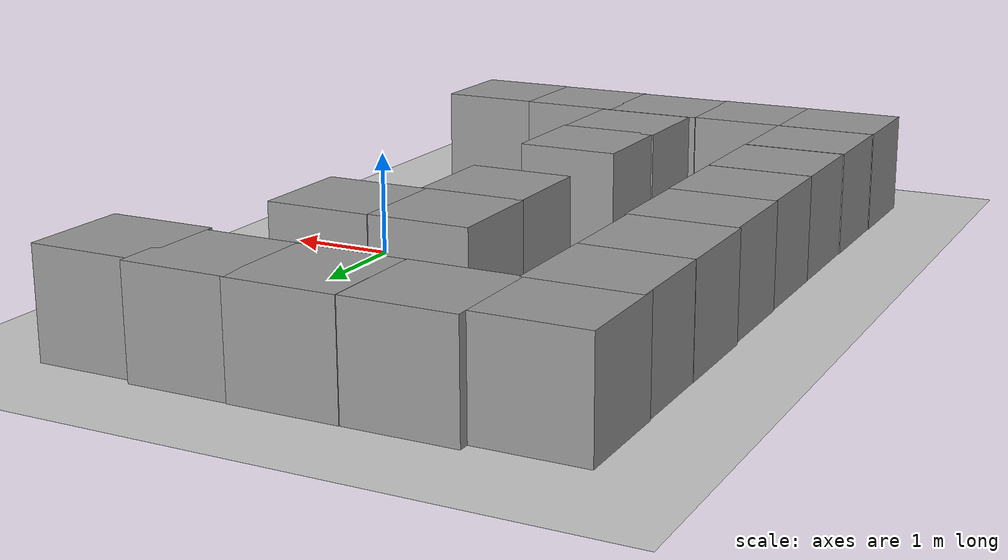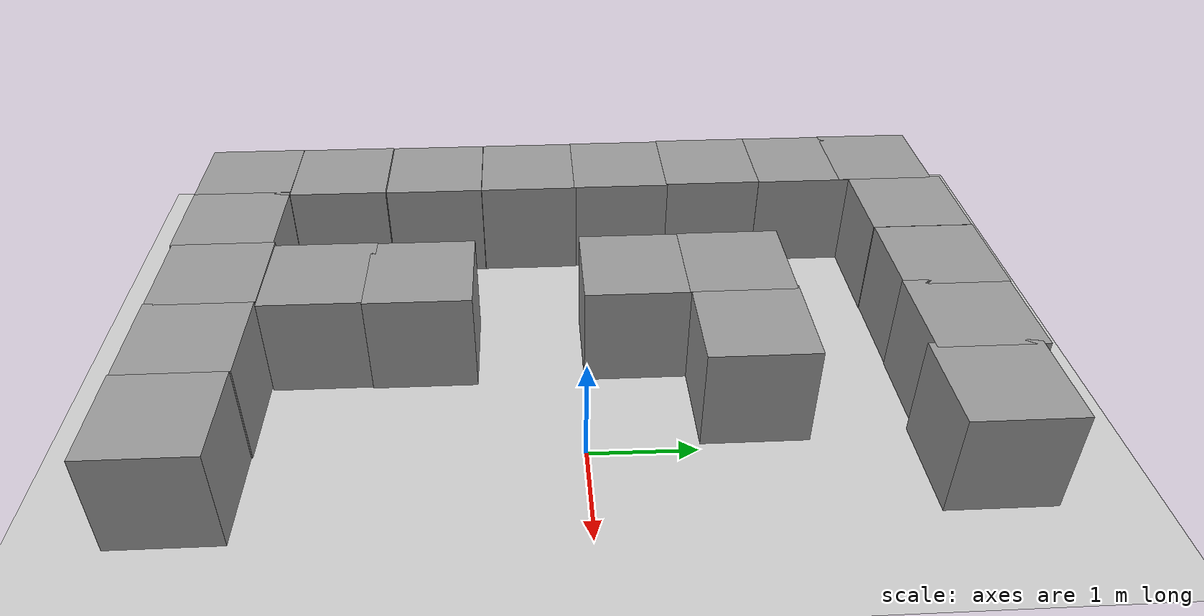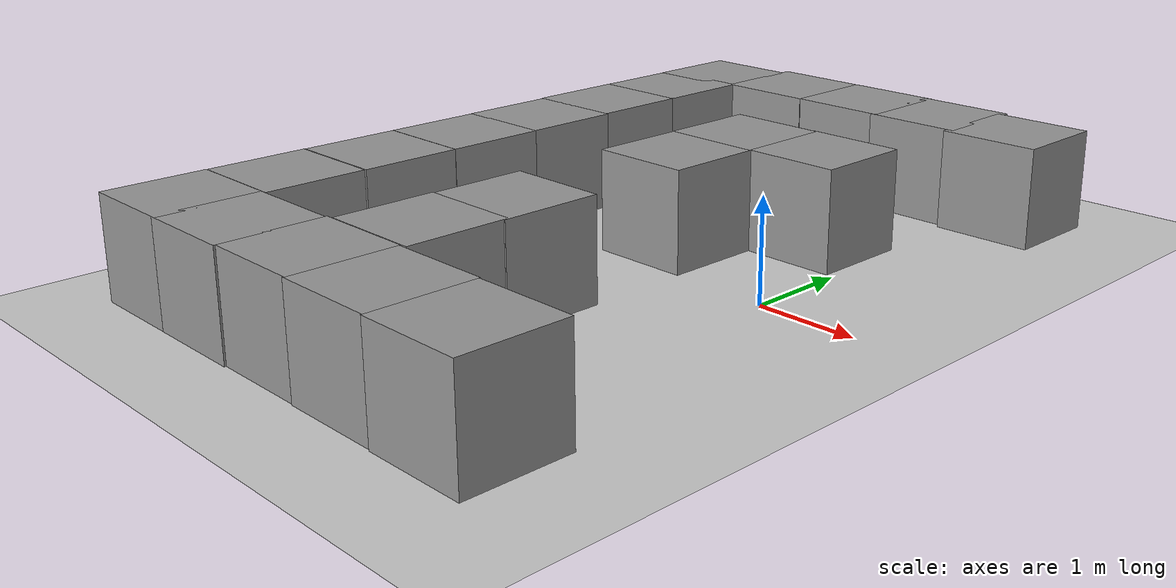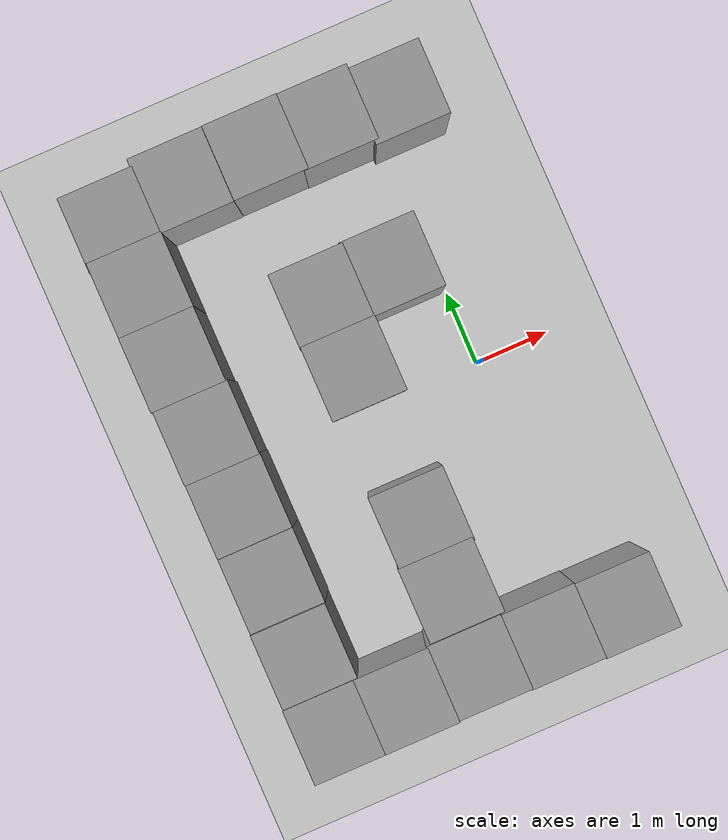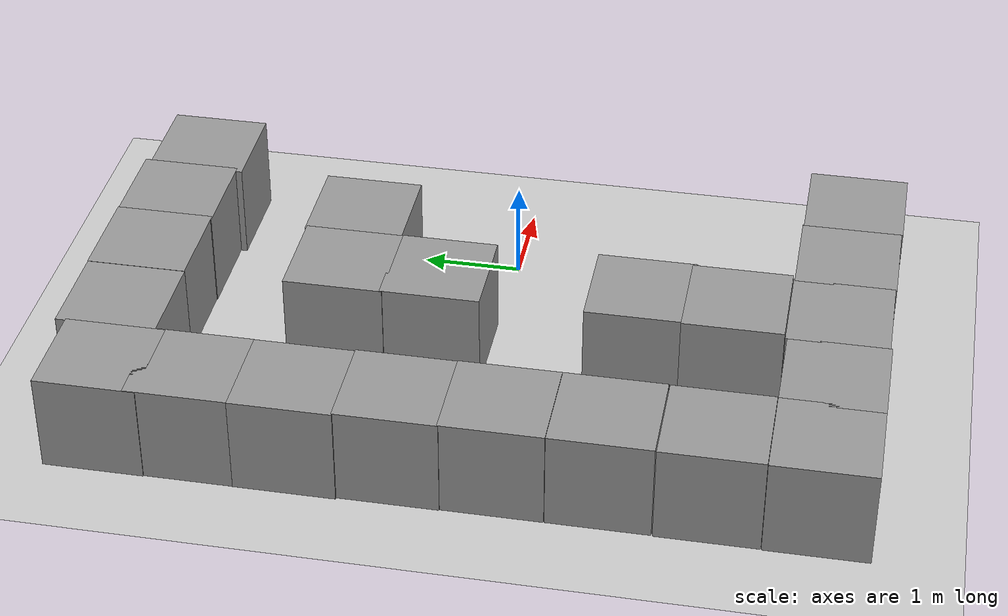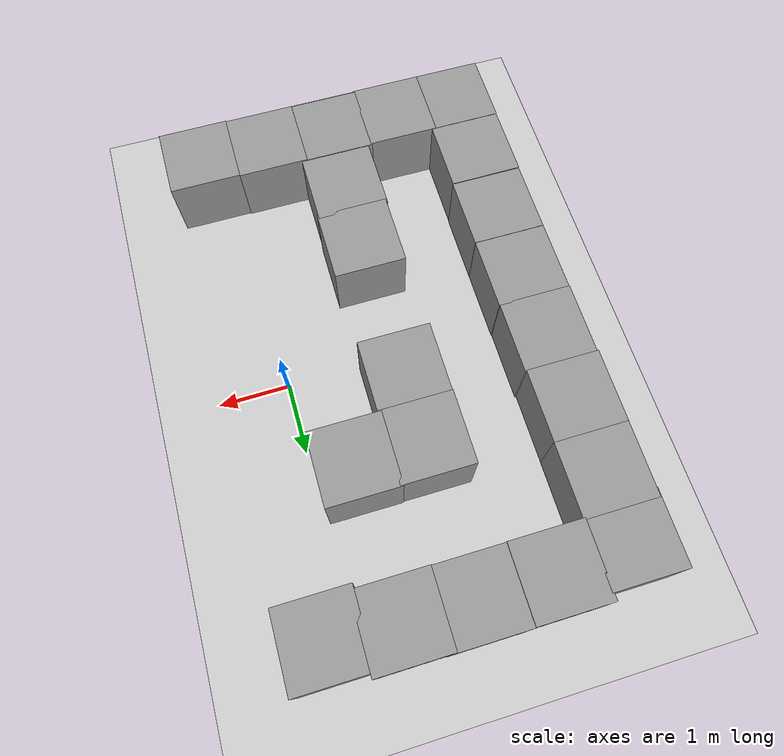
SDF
<sdf version="1.7">
 <world name="default">
  <model name="ground_plane">
   <static>1</static>
   <link name="link">
    <collision name="collision">
     <geometry><plane><normal>0 0 1</normal><size>100 100</size></plane></geometry>
     <surface><friction><ode><mu>100</mu><mu2>50</mu2></ode></friction></surface>
    </collision>
    <visual name="visual">
     <cast_shadows>0</cast_shadows>
     <geometry><plane><normal>0 0 1</normal><size>100 100</size></plane></geometry>
     <material>
      <script><uri>file://media/materials/scripts/gazebo.material</uri><name>Gazebo/Grey</name></script>
     </material>
    </visual>
   </link>
  </model>
  <model name="turtlebot3_world">
   <link name="link_4">
    <inertial>
     <mass>1</mass>
     <inertia>
      <ixx>0.166667</ixx>
      <ixy>0</ixy>
      <ixz>0</ixz>
      <iyy>0.166667</iyy>
      <iyz>0</iyz>
      <izz>0.166667</izz>
     </inertia>
    </inertial>
    <pose>-3.51588 2.52725 0.5 0 -0 0</pose>
    <visual name="visual">
     <geometry><box><size>1 1 1</size></box></geometry>
     <material>
      <lighting>1</lighting>
      <script><uri>file://media/materials/scripts/gazebo.material</uri><name>Gazebo/Grey</name></script>
      <shader type="pixel"/>
     </material>
    </visual>
    <collision name="collision">
     <geometry><box><size>1 1 1</size></box></geometry>
     <surface>
      <friction>
       <ode><mu>1</mu><mu2>1</mu2><fdir1>0 0 0</fdir1><slip1>0</slip1><slip2>0</slip2></ode>
       <torsional>
        <coefficient>1</coefficient>
        <patch_radius>0</patch_radius>
        <surface_radius>0</surface_radius>
        <use_patch_radius>1</use_patch_radius>
        <ode><slip>0</slip></ode>
       </torsional>
      </friction>
      <bounce><restitution_coefficient>0</restitution_coefficient><threshold>1e+06</threshold></bounce>
      <contact>
       <collide_without_contact>0</collide_without_contact>
       <collide_without_contact_bitmask>1</collide_without_contact_bitmask>
       <collide_bitmask>1</collide_bitmask>
       <ode>
        <soft_cfm>0</soft_cfm>
        <soft_erp>0.2</soft_erp>
        <kp>1e+13</kp>
        <kd>1</kd>
        <max_vel>0.01</max_vel>
        <min_depth>0</min_depth>
       </ode>
       <bullet>
        <split_impulse>1</split_impulse>
        <split_impulse_penetration_threshold>-0.01</split_impulse_penetration_threshold>
        <soft_cfm>0</soft_cfm>
        <soft_erp>0.2</soft_erp>
        <kp>1e+13</kp>
        <kd>1</kd>
       </bullet>
      </contact>
     </surface>
    </collision>
   </link>
   <link name="link_4_clone">
    <inertial>
     <mass>1</mass>
     <inertia>
      <ixx>0.166667</ixx>
      <ixy>0</ixy>
      <ixz>0</ixz>
      <iyy>0.166667</iyy>
      <iyz>0</iyz>
      <izz>0.166667</izz>
     </inertia>
    </inertial>
    <pose>-3.51881 1.52869 0.5 0 -0 0</pose>
    <visual name="visual">
     <geometry><box><size>1 1 1</size></box></geometry>
     <material>
      <lighting>1</lighting>
      <script><uri>file://media/materials/scripts/gazebo.material</uri><name>Gazebo/Grey</name></script>
      <shader type="pixel"/>
     </material>
    </visual>
    <collision name="collision">
     <geometry><box><size>1 1 1</size></box></geometry>
     <surface>
      <friction>
       <ode><mu>1</mu><mu2>1</mu2><fdir1>0 0 0</fdir1><slip1>0</slip1><slip2>0</slip2></ode>
       <torsional>
        <coefficient>1</coefficient>
        <patch_radius>0</patch_radius>
        <surface_radius>0</surface_radius>
        <use_patch_radius>1</use_patch_radius>
        <ode><slip>0</slip></ode>
       </torsional>
      </friction>
      <bounce><restitution_coefficient>0</restitution_coefficient><threshold>1e+06</threshold></bounce>
      <contact>
       <collide_without_contact>0</collide_without_contact>
       <collide_without_contact_bitmask>1</collide_without_contact_bitmask>
       <collide_bitmask>1</collide_bitmask>
       <ode>
        <soft_cfm>0</soft_cfm>
        <soft_erp>0.2</soft_erp>
        <kp>1e+13</kp>
        <kd>1</kd>
        <max_vel>0.01</max_vel>
        <min_depth>0</min_depth>
       </ode>
       <bullet>
        <split_impulse>1</split_impulse>
        <split_impulse_penetration_threshold>-0.01</split_impulse_penetration_threshold>
        <soft_cfm>0</soft_cfm>
        <soft_erp>0.2</soft_erp>
        <kp>1e+13</kp>
        <kd>1</kd>
       </bullet>
      </contact>
     </surface>
    </collision>
   </link>
   <link name="link_4_clone_0">
    <inertial>
     <mass>1</mass>
     <inertia>
      <ixx>0.166667</ixx>
      <ixy>0</ixy>
      <ixz>0</ixz>
      <iyy>0.166667</iyy>
      <iyz>0</iyz>
      <izz>0.166667</izz>
     </inertia>
    </inertial>
    <pose>-3.49974 0.540999 0.5 0 -0 0</pose>
    <visual name="visual">
     <geometry><box><size>1 1 1</size></box></geometry>
     <material>
      <lighting>1</lighting>
      <script><uri>file://media/materials/scripts/gazebo.material</uri><name>Gazebo/Grey</name></script>
      <shader type="pixel"/>
     </material>
    </visual>
    <collision name="collision">
     <geometry><box><size>1 1 1</size></box></geometry>
     <surface>
      <friction>
       <ode><mu>1</mu><mu2>1</mu2><fdir1>0 0 0</fdir1><slip1>0</slip1><slip2>0</slip2></ode>
       <torsional>
        <coefficient>1</coefficient>
        <patch_radius>0</patch_radius>
        <surface_radius>0</surface_radius>
        <use_patch_radius>1</use_patch_radius>
        <ode><slip>0</slip></ode>
       </torsional>
      </friction>
      <bounce><restitution_coefficient>0</restitution_coefficient><threshold>1e+06</threshold></bounce>
      <contact>
       <collide_without_contact>0</collide_without_contact>
       <collide_without_contact_bitmask>1</collide_without_contact_bitmask>
       <collide_bitmask>1</collide_bitmask>
       <ode>
        <soft_cfm>0</soft_cfm>
        <soft_erp>0.2</soft_erp>
        <kp>1e+13</kp>
        <kd>1</kd>
        <max_vel>0.01</max_vel>
        <min_depth>0</min_depth>
       </ode>
       <bullet>
        <split_impulse>1</split_impulse>
        <split_impulse_penetration_threshold>-0.01</split_impulse_penetration_threshold>
        <soft_cfm>0</soft_cfm>
        <soft_erp>0.2</soft_erp>
        <kp>1e+13</kp>
        <kd>1</kd>
       </bullet>
      </contact>
     </surface>
    </collision>
   </link>
   <link name="link_4_clone_1">
    <inertial>
     <mass>1</mass>
     <inertia>
      <ixx>0.166667</ixx>
      <ixy>0</ixy>
      <ixz>0</ixz>
      <iyy>0.166667</iyy>
      <iyz>0</iyz>
      <izz>0.166667</izz>
     </inertia>
    </inertial>
    <pose>-3.49177 -0.443894 0.5 0 -0 0</pose>
    <visual name="visual">
     <geometry><box><size>1 1 1</size></box></geometry>
     <material>
      <lighting>1</lighting>
      <script><uri>file://media/materials/scripts/gazebo.material</uri><name>Gazebo/Grey</name></script>
      <shader type="pixel"/>
     </material>
    </visual>
    <collision name="collision">
     <geometry><box><size>1 1 1</size></box></geometry>
     <surface>
      <friction>
       <ode><mu>1</mu><mu2>1</mu2><fdir1>0 0 0</fdir1><slip1>0</slip1><slip2>0</slip2></ode>
       <torsional>
        <coefficient>1</coefficient>
        <patch_radius>0</patch_radius>
        <surface_radius>0</surface_radius>
        <use_patch_radius>1</use_patch_radius>
        <ode><slip>0</slip></ode>
       </torsional>
      </friction>
      <bounce><restitution_coefficient>0</restitution_coefficient><threshold>1e+06</threshold></bounce>
      <contact>
       <collide_without_contact>0</collide_without_contact>
       <collide_without_contact_bitmask>1</collide_without_contact_bitmask>
       <collide_bitmask>1</collide_bitmask>
       <ode>
        <soft_cfm>0</soft_cfm>
        <soft_erp>0.2</soft_erp>
        <kp>1e+13</kp>
        <kd>1</kd>
        <max_vel>0.01</max_vel>
        <min_depth>0</min_depth>
       </ode>
       <bullet>
        <split_impulse>1</split_impulse>
        <split_impulse_penetration_threshold>-0.01</split_impulse_penetration_threshold>
        <soft_cfm>0</soft_cfm>
        <soft_erp>0.2</soft_erp>
        <kp>1e+13</kp>
        <kd>1</kd>
       </bullet>
      </contact>
     </surface>
    </collision>
   </link>
   <link name="link_4_clone_13">
    <inertial>
     <mass>1</mass>
     <inertia>
      <ixx>0.166667</ixx>
      <ixy>0</ixy>
      <ixz>0</ixz>
      <iyy>0.166667</iyy>
      <iyz>0</iyz>
      <izz>0.166667</izz>
     </inertia>
    </inertial>
    <pose>-2.56143 -3.46208 0.5 0 -0 0</pose>
    <visual name="visual">
     <geometry><box><size>1 1 1</size></box></geometry>
     <material>
      <lighting>1</lighting>
      <script><uri>file://media/materials/scripts/gazebo.material</uri><name>Gazebo/Grey</name></script>
      <shader type="pixel"/>
     </material>
    </visual>
    <collision name="collision">
     <geometry><box><size>1 1 1</size></box></geometry>
     <surface>
      <friction>
       <ode><mu>1</mu><mu2>1</mu2><fdir1>0 0 0</fdir1><slip1>0</slip1><slip2>0</slip2></ode>
       <torsional>
        <coefficient>1</coefficient>
        <patch_radius>0</patch_radius>
        <surface_radius>0</surface_radius>
        <use_patch_radius>1</use_patch_radius>
        <ode><slip>0</slip></ode>
       </torsional>
      </friction>
      <bounce><restitution_coefficient>0</restitution_coefficient><threshold>1e+06</threshold></bounce>
      <contact>
       <collide_without_contact>0</collide_without_contact>
       <collide_without_contact_bitmask>1</collide_without_contact_bitmask>
       <collide_bitmask>1</collide_bitmask>
       <ode>
        <soft_cfm>0</soft_cfm>
        <soft_erp>0.2</soft_erp>
        <kp>1e+13</kp>
        <kd>1</kd>
        <max_vel>0.01</max_vel>
        <min_depth>0</min_depth>
       </ode>
       <bullet>
        <split_impulse>1</split_impulse>
        <split_impulse_penetration_threshold>-0.01</split_impulse_penetration_threshold>
        <soft_cfm>0</soft_cfm>
        <soft_erp>0.2</soft_erp>
        <kp>1e+13</kp>
        <kd>1</kd>
       </bullet>
      </contact>
     </surface>
    </collision>
   </link>
   <link name="link_4_clone_14">
    <inertial>
     <mass>1</mass>
     <inertia>
      <ixx>0.166667</ixx>
      <ixy>0</ixy>
      <ixz>0</ixz>
      <iyy>0.166667</iyy>
      <iyz>0</iyz>
      <izz>0.166667</izz>
     </inertia>
    </inertial>
    <pose>-1.57857 -3.44426 0.5 0 -0 0</pose>
    <visual name="visual">
     <geometry><box><size>1 1 1</size></box></geometry>
     <material>
      <lighting>1</lighting>
      <script><uri>file://media/materials/scripts/gazebo.material</uri><name>Gazebo/Grey</name></script>
      <shader type="pixel"/>
     </material>
    </visual>
    <collision name="collision">
     <geometry><box><size>1 1 1</size></box></geometry>
     <surface>
      <friction>
       <ode><mu>1</mu><mu2>1</mu2><fdir1>0 0 0</fdir1><slip1>0</slip1><slip2>0</slip2></ode>
       <torsional>
        <coefficient>1</coefficient>
        <patch_radius>0</patch_radius>
        <surface_radius>0</surface_radius>
        <use_patch_radius>1</use_patch_radius>
        <ode><slip>0</slip></ode>
       </torsional>
      </friction>
      <bounce><restitution_coefficient>0</restitution_coefficient><threshold>1e+06</threshold></bounce>
      <contact>
       <collide_without_contact>0</collide_without_contact>
       <collide_without_contact_bitmask>1</collide_without_contact_bitmask>
       <collide_bitmask>1</collide_bitmask>
       <ode>
        <soft_cfm>0</soft_cfm>
        <soft_erp>0.2</soft_erp>
        <kp>1e+13</kp>
        <kd>1</kd>
        <max_vel>0.01</max_vel>
        <min_depth>0</min_depth>
       </ode>
       <bullet>
        <split_impulse>1</split_impulse>
        <split_impulse_penetration_threshold>-0.01</split_impulse_penetration_threshold>
        <soft_cfm>0</soft_cfm>
        <soft_erp>0.2</soft_erp>
        <kp>1e+13</kp>
        <kd>1</kd>
       </bullet>
      </contact>
     </surface>
    </collision>
   </link>
   <link name="link_4_clone_15">
    <inertial>
     <mass>1</mass>
     <inertia>
      <ixx>0.166667</ixx>
      <ixy>0</ixy>
      <ixz>0</ixz>
      <iyy>0.166667</iyy>
      <iyz>0</iyz>
      <izz>0.166667</izz>
     </inertia>
    </inertial>
    <pose>-0.599535 -3.45421 0.5 0 -0 0</pose>
    <visual name="visual">
     <geometry><box><size>1 1 1</size></box></geometry>
     <material>
      <lighting>1</lighting>
      <script><uri>file://media/materials/scripts/gazebo.material</uri><name>Gazebo/Grey</name></script>
      <shader type="pixel"/>
     </material>
    </visual>
    <collision name="collision">
     <geometry><box><size>1 1 1</size></box></geometry>
     <surface>
      <friction>
       <ode><mu>1</mu><mu2>1</mu2><fdir1>0 0 0</fdir1><slip1>0</slip1><slip2>0</slip2></ode>
       <torsional>
        <coefficient>1</coefficient>
        <patch_radius>0</patch_radius>
        <surface_radius>0</surface_radius>
        <use_patch_radius>1</use_patch_radius>
        <ode><slip>0</slip></ode>
       </torsional>
      </friction>
      <bounce><restitution_coefficient>0</restitution_coefficient><threshold>1e+06</threshold></bounce>
      <contact>
       <collide_without_contact>0</collide_without_contact>
       <collide_without_contact_bitmask>1</collide_without_contact_bitmask>
       <collide_bitmask>1</collide_bitmask>
       <ode>
        <soft_cfm>0</soft_cfm>
        <soft_erp>0.2</soft_erp>
        <kp>1e+13</kp>
        <kd>1</kd>
        <max_vel>0.01</max_vel>
        <min_depth>0</min_depth>
       </ode>
       <bullet>
        <split_impulse>1</split_impulse>
        <split_impulse_penetration_threshold>-0.01</split_impulse_penetration_threshold>
        <soft_cfm>0</soft_cfm>
        <soft_erp>0.2</soft_erp>
        <kp>1e+13</kp>
        <kd>1</kd>
       </bullet>
      </contact>
     </surface>
    </collision>
   </link>
   <link name="link_4_clone_16">
    <inertial>
     <mass>1</mass>
     <inertia>
      <ixx>0.166667</ixx>
      <ixy>0</ixy>
      <ixz>0</ixz>
      <iyy>0.166667</iyy>
      <iyz>0</iyz>
      <izz>0.166667</izz>
     </inertia>
    </inertial>
    <pose>0.398656 -3.46623 0.5 0 -0 0</pose>
    <visual name="visual">
     <geometry><box><size>1 1 1</size></box></geometry>
     <material>
      <lighting>1</lighting>
      <script><uri>file://media/materials/scripts/gazebo.material</uri><name>Gazebo/Grey</name></script>
      <shader type="pixel"/>
     </material>
    </visual>
    <collision name="collision">
     <geometry><box><size>1 1 1</size></box></geometry>
     <surface>
      <friction>
       <ode><mu>1</mu><mu2>1</mu2><fdir1>0 0 0</fdir1><slip1>0</slip1><slip2>0</slip2></ode>
       <torsional>
        <coefficient>1</coefficient>
        <patch_radius>0</patch_radius>
        <surface_radius>0</surface_radius>
        <use_patch_radius>1</use_patch_radius>
        <ode><slip>0</slip></ode>
       </torsional>
      </friction>
      <bounce><restitution_coefficient>0</restitution_coefficient><threshold>1e+06</threshold></bounce>
      <contact>
       <collide_without_contact>0</collide_without_contact>
       <collide_without_contact_bitmask>1</collide_without_contact_bitmask>
       <collide_bitmask>1</collide_bitmask>
       <ode>
        <soft_cfm>0</soft_cfm>
        <soft_erp>0.2</soft_erp>
        <kp>1e+13</kp>
        <kd>1</kd>
        <max_vel>0.01</max_vel>
        <min_depth>0</min_depth>
       </ode>
       <bullet>
        <split_impulse>1</split_impulse>
        <split_impulse_penetration_threshold>-0.01</split_impulse_penetration_threshold>
        <soft_cfm>0</soft_cfm>
        <soft_erp>0.2</soft_erp>
        <kp>1e+13</kp>
        <kd>1</kd>
       </bullet>
      </contact>
     </surface>
    </collision>
   </link>
   <link name="link_4_clone_2">
    <inertial>
     <mass>1</mass>
     <inertia>
      <ixx>0.166667</ixx>
      <ixy>0</ixy>
      <ixz>0</ixz>
      <iyy>0.166667</iyy>
      <iyz>0</iyz>
      <izz>0.166667</izz>
     </inertia>
    </inertial>
    <pose>-3.49078 -1.44711 0.5 0 -0 0</pose>
    <visual name="visual">
     <geometry><box><size>1 1 1</size></box></geometry>
     <material>
      <lighting>1</lighting>
      <script><uri>file://media/materials/scripts/gazebo.material</uri><name>Gazebo/Grey</name></script>
      <shader type="pixel"/>
     </material>
    </visual>
    <collision name="collision">
     <geometry><box><size>1 1 1</size></box></geometry>
     <surface>
      <friction>
       <ode><mu>1</mu><mu2>1</mu2><fdir1>0 0 0</fdir1><slip1>0</slip1><slip2>0</slip2></ode>
       <torsional>
        <coefficient>1</coefficient>
        <patch_radius>0</patch_radius>
        <surface_radius>0</surface_radius>
        <use_patch_radius>1</use_patch_radius>
        <ode><slip>0</slip></ode>
       </torsional>
      </friction>
      <bounce><restitution_coefficient>0</restitution_coefficient><threshold>1e+06</threshold></bounce>
      <contact>
       <collide_without_contact>0</collide_without_contact>
       <collide_without_contact_bitmask>1</collide_without_contact_bitmask>
       <collide_bitmask>1</collide_bitmask>
       <ode>
        <soft_cfm>0</soft_cfm>
        <soft_erp>0.2</soft_erp>
        <kp>1e+13</kp>
        <kd>1</kd>
        <max_vel>0.01</max_vel>
        <min_depth>0</min_depth>
       </ode>
       <bullet>
        <split_impulse>1</split_impulse>
        <split_impulse_penetration_threshold>-0.01</split_impulse_penetration_threshold>
        <soft_cfm>0</soft_cfm>
        <soft_erp>0.2</soft_erp>
        <kp>1e+13</kp>
        <kd>1</kd>
       </bullet>
      </contact>
     </surface>
    </collision>
   </link>
   <link name="link_4_clone_29">
    <inertial>
     <mass>1</mass>
     <inertia>
      <ixx>0.166667</ixx>
      <ixy>0</ixy>
      <ixz>0</ixz>
      <iyy>0.166667</iyy>
      <iyz>0</iyz>
      <izz>0.166667</izz>
     </inertia>
    </inertial>
    <pose>-1.51608 -2.43615 0.5 0 -0 0</pose>
    <visual name="visual">
     <geometry><box><size>1 1 1</size></box></geometry>
     <material>
      <lighting>1</lighting>
      <script><uri>file://media/materials/scripts/gazebo.material</uri><name>Gazebo/Grey</name></script>
      <shader type="pixel"/>
     </material>
    </visual>
    <collision name="collision">
     <geometry><box><size>1 1 1</size></box></geometry>
     <surface>
      <friction>
       <ode><mu>1</mu><mu2>1</mu2><fdir1>0 0 0</fdir1><slip1>0</slip1><slip2>0</slip2></ode>
       <torsional>
        <coefficient>1</coefficient>
        <patch_radius>0</patch_radius>
        <surface_radius>0</surface_radius>
        <use_patch_radius>1</use_patch_radius>
        <ode><slip>0</slip></ode>
       </torsional>
      </friction>
      <bounce><restitution_coefficient>0</restitution_coefficient><threshold>1e+06</threshold></bounce>
      <contact>
       <collide_without_contact>0</collide_without_contact>
       <collide_without_contact_bitmask>1</collide_without_contact_bitmask>
       <collide_bitmask>1</collide_bitmask>
       <ode>
        <soft_cfm>0</soft_cfm>
        <soft_erp>0.2</soft_erp>
        <kp>1e+13</kp>
        <kd>1</kd>
        <max_vel>0.01</max_vel>
        <min_depth>0</min_depth>
       </ode>
       <bullet>
        <split_impulse>1</split_impulse>
        <split_impulse_penetration_threshold>-0.01</split_impulse_penetration_threshold>
        <soft_cfm>0</soft_cfm>
        <soft_erp>0.2</soft_erp>
        <kp>1e+13</kp>
        <kd>1</kd>
       </bullet>
      </contact>
     </surface>
    </collision>
   </link>
   <link name="link_4_clone_3">
    <inertial>
     <mass>1</mass>
     <inertia>
      <ixx>0.166667</ixx>
      <ixy>0</ixy>
      <ixz>0</ixz>
      <iyy>0.166667</iyy>
      <iyz>0</iyz>
      <izz>0.166667</izz>
     </inertia>
    </inertial>
    <pose>-3.49859 -2.45716 0.5 0 -0 0</pose>
    <visual name="visual">
     <geometry><box><size>1 1 1</size></box></geometry>
     <material>
      <lighting>1</lighting>
      <script><uri>file://media/materials/scripts/gazebo.material</uri><name>Gazebo/Grey</name></script>
      <shader type="pixel"/>
     </material>
    </visual>
    <collision name="collision">
     <geometry><box><size>1 1 1</size></box></geometry>
     <surface>
      <friction>
       <ode><mu>1</mu><mu2>1</mu2><fdir1>0 0 0</fdir1><slip1>0</slip1><slip2>0</slip2></ode>
       <torsional>
        <coefficient>1</coefficient>
        <patch_radius>0</patch_radius>
        <surface_radius>0</surface_radius>
        <use_patch_radius>1</use_patch_radius>
        <ode><slip>0</slip></ode>
       </torsional>
      </friction>
      <bounce><restitution_coefficient>0</restitution_coefficient><threshold>1e+06</threshold></bounce>
      <contact>
       <collide_without_contact>0</collide_without_contact>
       <collide_without_contact_bitmask>1</collide_without_contact_bitmask>
       <collide_bitmask>1</collide_bitmask>
       <ode>
        <soft_cfm>0</soft_cfm>
        <soft_erp>0.2</soft_erp>
        <kp>1e+13</kp>
        <kd>1</kd>
        <max_vel>0.01</max_vel>
        <min_depth>0</min_depth>
       </ode>
       <bullet>
        <split_impulse>1</split_impulse>
        <split_impulse_penetration_threshold>-0.01</split_impulse_penetration_threshold>
        <soft_cfm>0</soft_cfm>
        <soft_erp>0.2</soft_erp>
        <kp>1e+13</kp>
        <kd>1</kd>
       </bullet>
      </contact>
     </surface>
    </collision>
   </link>
   <link name="link_4_clone_30">
    <inertial>
     <mass>1</mass>
     <inertia>
      <ixx>0.166667</ixx>
      <ixy>0</ixy>
      <ixz>0</ixz>
      <iyy>0.166667</iyy>
      <iyz>0</iyz>
      <izz>0.166667</izz>
     </inertia>
    </inertial>
    <pose>-1.49992 -1.4863 0.5 0 -0 0</pose>
    <visual name="visual">
     <geometry><box><size>1 1 1</size></box></geometry>
     <material>
      <lighting>1</lighting>
      <script><uri>file://media/materials/scripts/gazebo.material</uri><name>Gazebo/Grey</name></script>
      <shader type="pixel"/>
     </material>
    </visual>
    <collision name="collision">
     <geometry><box><size>1 1 1</size></box></geometry>
     <surface>
      <friction>
       <ode><mu>1</mu><mu2>1</mu2><fdir1>0 0 0</fdir1><slip1>0</slip1><slip2>0</slip2></ode>
       <torsional>
        <coefficient>1</coefficient>
        <patch_radius>0</patch_radius>
        <surface_radius>0</surface_radius>
        <use_patch_radius>1</use_patch_radius>
        <ode><slip>0</slip></ode>
       </torsional>
      </friction>
      <bounce><restitution_coefficient>0</restitution_coefficient><threshold>1e+06</threshold></bounce>
      <contact>
       <collide_without_contact>0</collide_without_contact>
       <collide_without_contact_bitmask>1</collide_without_contact_bitmask>
       <collide_bitmask>1</collide_bitmask>
       <ode>
        <soft_cfm>0</soft_cfm>
        <soft_erp>0.2</soft_erp>
        <kp>1e+13</kp>
        <kd>1</kd>
        <max_vel>0.01</max_vel>
        <min_depth>0</min_depth>
       </ode>
       <bullet>
        <split_impulse>1</split_impulse>
        <split_impulse_penetration_threshold>-0.01</split_impulse_penetration_threshold>
        <soft_cfm>0</soft_cfm>
        <soft_erp>0.2</soft_erp>
        <kp>1e+13</kp>
        <kd>1</kd>
       </bullet>
      </contact>
     </surface>
    </collision>
   </link>
   <link name="link_4_clone_31">
    <inertial>
     <mass>1</mass>
     <inertia>
      <ixx>0.166667</ixx>
      <ixy>0</ixy>
      <ixz>0</ixz>
      <iyy>0.166667</iyy>
      <iyz>0</iyz>
      <izz>0.166667</izz>
     </inertia>
    </inertial>
    <pose>-1.52199 0.536252 0.5 0 -0 0</pose>
    <visual name="visual">
     <geometry><box><size>1 1 1</size></box></geometry>
     <material>
      <lighting>1</lighting>
      <script><uri>file://media/materials/scripts/gazebo.material</uri><name>Gazebo/Grey</name></script>
      <shader type="pixel"/>
     </material>
    </visual>
    <collision name="collision">
     <geometry><box><size>1 1 1</size></box></geometry>
     <surface>
      <friction>
       <ode><mu>1</mu><mu2>1</mu2><fdir1>0 0 0</fdir1><slip1>0</slip1><slip2>0</slip2></ode>
       <torsional>
        <coefficient>1</coefficient>
        <patch_radius>0</patch_radius>
        <surface_radius>0</surface_radius>
        <use_patch_radius>1</use_patch_radius>
        <ode><slip>0</slip></ode>
       </torsional>
      </friction>
      <bounce><restitution_coefficient>0</restitution_coefficient><threshold>1e+06</threshold></bounce>
      <contact>
       <collide_without_contact>0</collide_without_contact>
       <collide_without_contact_bitmask>1</collide_without_contact_bitmask>
       <collide_bitmask>1</collide_bitmask>
       <ode>
        <soft_cfm>0</soft_cfm>
        <soft_erp>0.2</soft_erp>
        <kp>1e+13</kp>
        <kd>1</kd>
        <max_vel>0.01</max_vel>
        <min_depth>0</min_depth>
       </ode>
       <bullet>
        <split_impulse>1</split_impulse>
        <split_impulse_penetration_threshold>-0.01</split_impulse_penetration_threshold>
        <soft_cfm>0</soft_cfm>
        <soft_erp>0.2</soft_erp>
        <kp>1e+13</kp>
        <kd>1</kd>
       </bullet>
      </contact>
     </surface>
    </collision>
   </link>
   <link name="link_4_clone_32">
    <inertial>
     <mass>1</mass>
     <inertia>
      <ixx>0.166667</ixx>
      <ixy>0</ixy>
      <ixz>0</ixz>
      <iyy>0.166667</iyy>
      <iyz>0</iyz>
      <izz>0.166667</izz>
     </inertia>
    </inertial>
    <pose>-1.53079 1.50922 0.5 0 -0 0</pose>
    <visual name="visual">
     <geometry><box><size>1 1 1</size></box></geometry>
     <material>
      <lighting>1</lighting>
      <script><uri>file://media/materials/scripts/gazebo.material</uri><name>Gazebo/Grey</name></script>
      <shader type="pixel"/>
     </material>
    </visual>
    <collision name="collision">
     <geometry><box><size>1 1 1</size></box></geometry>
     <surface>
      <friction>
       <ode><mu>1</mu><mu2>1</mu2><fdir1>0 0 0</fdir1><slip1>0</slip1><slip2>0</slip2></ode>
       <torsional>
        <coefficient>1</coefficient>
        <patch_radius>0</patch_radius>
        <surface_radius>0</surface_radius>
        <use_patch_radius>1</use_patch_radius>
        <ode><slip>0</slip></ode>
       </torsional>
      </friction>
      <bounce><restitution_coefficient>0</restitution_coefficient><threshold>1e+06</threshold></bounce>
      <contact>
       <collide_without_contact>0</collide_without_contact>
       <collide_without_contact_bitmask>1</collide_without_contact_bitmask>
       <collide_bitmask>1</collide_bitmask>
       <ode>
        <soft_cfm>0</soft_cfm>
        <soft_erp>0.2</soft_erp>
        <kp>1e+13</kp>
        <kd>1</kd>
        <max_vel>0.01</max_vel>
        <min_depth>0</min_depth>
       </ode>
       <bullet>
        <split_impulse>1</split_impulse>
        <split_impulse_penetration_threshold>-0.01</split_impulse_penetration_threshold>
        <soft_cfm>0</soft_cfm>
        <soft_erp>0.2</soft_erp>
        <kp>1e+13</kp>
        <kd>1</kd>
       </bullet>
      </contact>
     </surface>
    </collision>
   </link>
   <link name="link_4_clone_33">
    <inertial>
     <mass>1</mass>
     <inertia>
      <ixx>0.166667</ixx>
      <ixy>0</ixy>
      <ixz>0</ixz>
      <iyy>0.166667</iyy>
      <iyz>0</iyz>
      <izz>0.166667</izz>
     </inertia>
    </inertial>
    <pose>-0.575022 1.52129 0.5 0 -0 0</pose>
    <visual name="visual">
     <geometry><box><size>1 1 1</size></box></geometry>
     <material>
      <lighting>1</lighting>
      <script><uri>file://media/materials/scripts/gazebo.material</uri><name>Gazebo/Grey</name></script>
      <shader type="pixel"/>
     </material>
    </visual>
    <collision name="collision">
     <geometry><box><size>1 1 1</size></box></geometry>
     <surface>
      <friction>
       <ode><mu>1</mu><mu2>1</mu2><fdir1>0 0 0</fdir1><slip1>0</slip1><slip2>0</slip2></ode>
       <torsional>
        <coefficient>1</coefficient>
        <patch_radius>0</patch_radius>
        <surface_radius>0</surface_radius>
        <use_patch_radius>1</use_patch_radius>
        <ode><slip>0</slip></ode>
       </torsional>
      </friction>
      <bounce><restitution_coefficient>0</restitution_coefficient><threshold>1e+06</threshold></bounce>
      <contact>
       <collide_without_contact>0</collide_without_contact>
       <collide_without_contact_bitmask>1</collide_without_contact_bitmask>
       <collide_bitmask>1</collide_bitmask>
       <ode>
        <soft_cfm>0</soft_cfm>
        <soft_erp>0.2</soft_erp>
        <kp>1e+13</kp>
        <kd>1</kd>
        <max_vel>0.01</max_vel>
        <min_depth>0</min_depth>
       </ode>
       <bullet>
        <split_impulse>1</split_impulse>
        <split_impulse_penetration_threshold>-0.01</split_impulse_penetration_threshold>
        <soft_cfm>0</soft_cfm>
        <soft_erp>0.2</soft_erp>
        <kp>1e+13</kp>
        <kd>1</kd>
       </bullet>
      </contact>
     </surface>
    </collision>
   </link>
   <link name="link_4_clone_4">
    <inertial>
     <mass>1</mass>
     <inertia>
      <ixx>0.166667</ixx>
      <ixy>0</ixy>
      <ixz>0</ixz>
      <iyy>0.166667</iyy>
      <iyz>0</iyz>
      <izz>0.166667</izz>
     </inertia>
    </inertial>
    <pose>-3.5063 -3.46092 0.5 0 -0 0</pose>
    <visual name="visual">
     <geometry><box><size>1 1 1</size></box></geometry>
     <material>
      <lighting>1</lighting>
      <script><uri>file://media/materials/scripts/gazebo.material</uri><name>Gazebo/Grey</name></script>
      <shader type="pixel"/>
     </material>
    </visual>
    <collision name="collision">
     <geometry><box><size>1 1 1</size></box></geometry>
     <surface>
      <friction>
       <ode><mu>1</mu><mu2>1</mu2><fdir1>0 0 0</fdir1><slip1>0</slip1><slip2>0</slip2></ode>
       <torsional>
        <coefficient>1</coefficient>
        <patch_radius>0</patch_radius>
        <surface_radius>0</surface_radius>
        <use_patch_radius>1</use_patch_radius>
        <ode><slip>0</slip></ode>
       </torsional>
      </friction>
      <bounce><restitution_coefficient>0</restitution_coefficient><threshold>1e+06</threshold></bounce>
      <contact>
       <collide_without_contact>0</collide_without_contact>
       <collide_without_contact_bitmask>1</collide_without_contact_bitmask>
       <collide_bitmask>1</collide_bitmask>
       <ode>
        <soft_cfm>0</soft_cfm>
        <soft_erp>0.2</soft_erp>
        <kp>1e+13</kp>
        <kd>1</kd>
        <max_vel>0.01</max_vel>
        <min_depth>0</min_depth>
       </ode>
       <bullet>
        <split_impulse>1</split_impulse>
        <split_impulse_penetration_threshold>-0.01</split_impulse_penetration_threshold>
        <soft_cfm>0</soft_cfm>
        <soft_erp>0.2</soft_erp>
        <kp>1e+13</kp>
        <kd>1</kd>
       </bullet>
      </contact>
     </surface>
    </collision>
   </link>
   <link name="link_4_clone_5">
    <inertial>
     <mass>1</mass>
     <inertia>
      <ixx>0.166667</ixx>
      <ixy>0</ixy>
      <ixz>0</ixz>
      <iyy>0.166667</iyy>
      <iyz>0</iyz>
      <izz>0.166667</izz>
     </inertia>
    </inertial>
    <pose>-3.52418 3.40151 0.5 0 -0 0</pose>
    <visual name="visual">
     <geometry><box><size>1 1 1</size></box></geometry>
     <material>
      <lighting>1</lighting>
      <script><uri>file://media/materials/scripts/gazebo.material</uri><name>Gazebo/Grey</name></script>
      <shader type="pixel"/>
     </material>
    </visual>
    <collision name="collision">
     <geometry><box><size>1 1 1</size></box></geometry>
     <surface>
      <friction>
       <ode><mu>1</mu><mu2>1</mu2><fdir1>0 0 0</fdir1><slip1>0</slip1><slip2>0</slip2></ode>
       <torsional>
        <coefficient>1</coefficient>
        <patch_radius>0</patch_radius>
        <surface_radius>0</surface_radius>
        <use_patch_radius>1</use_patch_radius>
        <ode><slip>0</slip></ode>
       </torsional>
      </friction>
      <bounce><restitution_coefficient>0</restitution_coefficient><threshold>1e+06</threshold></bounce>
      <contact>
       <collide_without_contact>0</collide_without_contact>
       <collide_without_contact_bitmask>1</collide_without_contact_bitmask>
       <collide_bitmask>1</collide_bitmask>
       <ode>
        <soft_cfm>0</soft_cfm>
        <soft_erp>0.2</soft_erp>
        <kp>1e+13</kp>
        <kd>1</kd>
        <max_vel>0.01</max_vel>
        <min_depth>0</min_depth>
       </ode>
       <bullet>
        <split_impulse>1</split_impulse>
        <split_impulse_penetration_threshold>-0.01</split_impulse_penetration_threshold>
        <soft_cfm>0</soft_cfm>
        <soft_erp>0.2</soft_erp>
        <kp>1e+13</kp>
        <kd>1</kd>
       </bullet>
      </contact>
     </surface>
    </collision>
   </link>
   <link name="link_4_clone_6">
    <inertial>
     <mass>1</mass>
     <inertia>
      <ixx>0.166667</ixx>
      <ixy>0</ixy>
      <ixz>0</ixz>
      <iyy>0.166667</iyy>
      <iyz>0</iyz>
      <izz>0.166667</izz>
     </inertia>
    </inertial>
    <pose>-2.54672 3.50152 0.5 0 -0 0</pose>
    <visual name="visual">
     <geometry><box><size>1 1 1</size></box></geometry>
     <material>
      <lighting>1</lighting>
      <script><uri>file://media/materials/scripts/gazebo.material</uri><name>Gazebo/Grey</name></script>
      <shader type="pixel"/>
     </material>
    </visual>
    <collision name="collision">
     <geometry><box><size>1 1 1</size></box></geometry>
     <surface>
      <friction>
       <ode><mu>1</mu><mu2>1</mu2><fdir1>0 0 0</fdir1><slip1>0</slip1><slip2>0</slip2></ode>
       <torsional>
        <coefficient>1</coefficient>
        <patch_radius>0</patch_radius>
        <surface_radius>0</surface_radius>
        <use_patch_radius>1</use_patch_radius>
        <ode><slip>0</slip></ode>
       </torsional>
      </friction>
      <bounce><restitution_coefficient>0</restitution_coefficient><threshold>1e+06</threshold></bounce>
      <contact>
       <collide_without_contact>0</collide_without_contact>
       <collide_without_contact_bitmask>1</collide_without_contact_bitmask>
       <collide_bitmask>1</collide_bitmask>
       <ode>
        <soft_cfm>0</soft_cfm>
        <soft_erp>0.2</soft_erp>
        <kp>1e+13</kp>
        <kd>1</kd>
        <max_vel>0.01</max_vel>
        <min_depth>0</min_depth>
       </ode>
       <bullet>
        <split_impulse>1</split_impulse>
        <split_impulse_penetration_threshold>-0.01</split_impulse_penetration_threshold>
        <soft_cfm>0</soft_cfm>
        <soft_erp>0.2</soft_erp>
        <kp>1e+13</kp>
        <kd>1</kd>
       </bullet>
      </contact>
     </surface>
    </collision>
   </link>
   <link name="link_4_clone_7">
    <inertial>
     <mass>1</mass>
     <inertia>
      <ixx>0.166667</ixx>
      <ixy>0</ixy>
      <ixz>0</ixz>
      <iyy>0.166667</iyy>
      <iyz>0</iyz>
      <izz>0.166667</izz>
     </inertia>
    </inertial>
    <pose>-1.54433 3.50729 0.5 0 -0 0</pose>
    <visual name="visual">
     <geometry><box><size>1 1 1</size></box></geometry>
     <material>
      <lighting>1</lighting>
      <script><uri>file://media/materials/scripts/gazebo.material</uri><name>Gazebo/Grey</name></script>
      <shader type="pixel"/>
     </material>
    </visual>
    <collision name="collision">
     <geometry><box><size>1 1 1</size></box></geometry>
     <surface>
      <friction>
       <ode><mu>1</mu><mu2>1</mu2><fdir1>0 0 0</fdir1><slip1>0</slip1><slip2>0</slip2></ode>
       <torsional>
        <coefficient>1</coefficient>
        <patch_radius>0</patch_radius>
        <surface_radius>0</surface_radius>
        <use_patch_radius>1</use_patch_radius>
        <ode><slip>0</slip></ode>
       </torsional>
      </friction>
      <bounce><restitution_coefficient>0</restitution_coefficient><threshold>1e+06</threshold></bounce>
      <contact>
       <collide_without_contact>0</collide_without_contact>
       <collide_without_contact_bitmask>1</collide_without_contact_bitmask>
       <collide_bitmask>1</collide_bitmask>
       <ode>
        <soft_cfm>0</soft_cfm>
        <soft_erp>0.2</soft_erp>
        <kp>1e+13</kp>
        <kd>1</kd>
        <max_vel>0.01</max_vel>
        <min_depth>0</min_depth>
       </ode>
       <bullet>
        <split_impulse>1</split_impulse>
        <split_impulse_penetration_threshold>-0.01</split_impulse_penetration_threshold>
        <soft_cfm>0</soft_cfm>
        <soft_erp>0.2</soft_erp>
        <kp>1e+13</kp>
        <kd>1</kd>
       </bullet>
      </contact>
     </surface>
    </collision>
   </link>
   <link name="link_4_clone_8">
    <inertial>
     <mass>1</mass>
     <inertia>
      <ixx>0.166667</ixx>
      <ixy>0</ixy>
      <ixz>0</ixz>
      <iyy>0.166667</iyy>
      <iyz>0</iyz>
      <izz>0.166667</izz>
     </inertia>
    </inertial>
    <pose>-0.608216 3.5 0.5 0 -0 0</pose>
    <visual name="visual">
     <geometry><box><size>1 1 1</size></box></geometry>
     <material>
      <lighting>1</lighting>
      <script><uri>file://media/materials/scripts/gazebo.material</uri><name>Gazebo/Grey</name></script>
      <shader type="pixel"/>
     </material>
    </visual>
    <collision name="collision">
     <geometry><box><size>1 1 1</size></box></geometry>
     <surface>
      <friction>
       <ode><mu>1</mu><mu2>1</mu2><fdir1>0 0 0</fdir1><slip1>0</slip1><slip2>0</slip2></ode>
       <torsional>
        <coefficient>1</coefficient>
        <patch_radius>0</patch_radius>
        <surface_radius>0</surface_radius>
        <use_patch_radius>1</use_patch_radius>
        <ode><slip>0</slip></ode>
       </torsional>
      </friction>
      <bounce><restitution_coefficient>0</restitution_coefficient><threshold>1e+06</threshold></bounce>
      <contact>
       <collide_without_contact>0</collide_without_contact>
       <collide_without_contact_bitmask>1</collide_without_contact_bitmask>
       <collide_bitmask>1</collide_bitmask>
       <ode>
        <soft_cfm>0</soft_cfm>
        <soft_erp>0.2</soft_erp>
        <kp>1e+13</kp>
        <kd>1</kd>
        <max_vel>0.01</max_vel>
        <min_depth>0</min_depth>
       </ode>
       <bullet>
        <split_impulse>1</split_impulse>
        <split_impulse_penetration_threshold>-0.01</split_impulse_penetration_threshold>
        <soft_cfm>0</soft_cfm>
        <soft_erp>0.2</soft_erp>
        <kp>1e+13</kp>
        <kd>1</kd>
       </bullet>
      </contact>
     </surface>
    </collision>
   </link>
   <link name="link_4_clone_9">
    <inertial>
     <mass>1</mass>
     <inertia>
      <ixx>0.166667</ixx>
      <ixy>0</ixy>
      <ixz>0</ixz>
      <iyy>0.166667</iyy>
      <iyz>0</iyz>
      <izz>0.166667</izz>
     </inertia>
    </inertial>
    <pose>0.326944 3.43597 0.5 0 -0 0</pose>
    <visual name="visual">
     <geometry><box><size>1 1 1</size></box></geometry>
     <material>
      <lighting>1</lighting>
      <script><uri>file://media/materials/scripts/gazebo.material</uri><name>Gazebo/Grey</name></script>
      <shader type="pixel"/>
     </material>
    </visual>
    <collision name="collision">
     <geometry><box><size>1 1 1</size></box></geometry>
     <surface>
      <friction>
       <ode><mu>1</mu><mu2>1</mu2><fdir1>0 0 0</fdir1><slip1>0</slip1><slip2>0</slip2></ode>
       <torsional>
        <coefficient>1</coefficient>
        <patch_radius>0</patch_radius>
        <surface_radius>0</surface_radius>
        <use_patch_radius>1</use_patch_radius>
        <ode><slip>0</slip></ode>
       </torsional>
      </friction>
      <bounce><restitution_coefficient>0</restitution_coefficient><threshold>1e+06</threshold></bounce>
      <contact>
       <collide_without_contact>0</collide_without_contact>
       <collide_without_contact_bitmask>1</collide_without_contact_bitmask>
       <collide_bitmask>1</collide_bitmask>
       <ode>
        <soft_cfm>0</soft_cfm>
        <soft_erp>0.2</soft_erp>
        <kp>1e+13</kp>
        <kd>1</kd>
        <max_vel>0.01</max_vel>
        <min_depth>0</min_depth>
       </ode>
       <bullet>
        <split_impulse>1</split_impulse>
        <split_impulse_penetration_threshold>-0.01</split_impulse_penetration_threshold>
        <soft_cfm>0</soft_cfm>
        <soft_erp>0.2</soft_erp>
        <kp>1e+13</kp>
        <kd>1</kd>
       </bullet>
      </contact>
     </surface>
    </collision>
   </link>
   <static>1</static>
  </model>
 </world>
</sdf>
